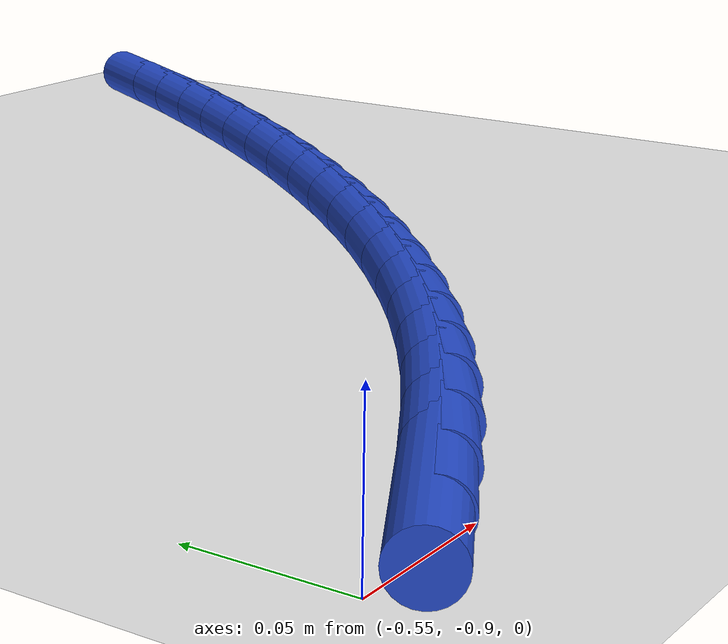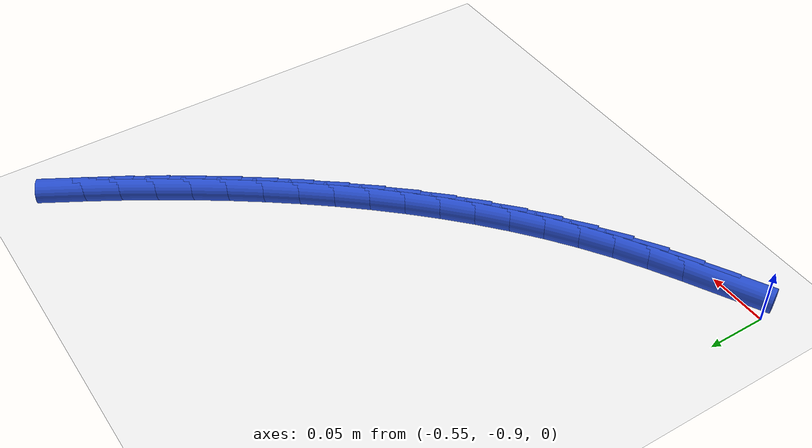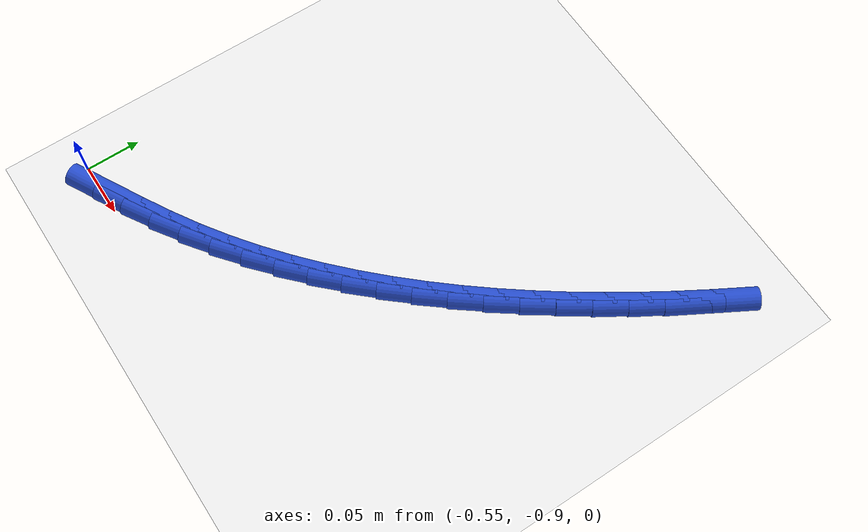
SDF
<sdf version="1.6">
 <world name="default">
  <model name="ground_plane">
   <static>1</static>
   <link name="link">
    <collision name="collision">
     <geometry><plane><normal>0 0 1</normal><size>100 100</size></plane></geometry>
     <surface><friction><ode><mu>100</mu><mu2>50</mu2></ode></friction></surface>
    </collision>
    <visual name="visual">
     <cast_shadows>0</cast_shadows>
     <geometry><plane><normal>0 0 1</normal><size>100 100</size></plane></geometry>
     <material>
      <script><uri>file://media/materials/scripts/gazebo.material</uri><name>Gazebo/WhiteGlow</name></script>
     </material>
    </visual>
   </link>
  </model>
  <model name="line">
   <link name="link_193">
    <pose>-0.5121933569216172 -0.8951482731390593 0.01 0 1.57 0.49168077200401605</pose>
    <collision name="collision">
     <geometry><cylinder><radius>0.01</radius><length>0.08</length></cylinder></geometry>
    </collision>
    <visual name="visual">
     <material>
      <script><name>Gazebo/Blue</name><uri>file://media/materials/scripts/gazebo.material</uri></script>
     </material>
     <geometry><cylinder><radius>0.01</radius><length>0.08</length></cylinder></geometry>
    </visual>
   </link>
   <link name="link_194">
    <pose>-0.486817605535445 -0.8815583137824394 0.01 0 1.57 0.5133104763786447</pose>
    <collision name="collision">
     <geometry><cylinder><radius>0.01</radius><length>0.08</length></cylinder></geometry>
    </collision>
    <visual name="visual">
     <material>
      <script><name>Gazebo/Blue</name><uri>file://media/materials/scripts/gazebo.material</uri></script>
     </material>
     <geometry><cylinder><radius>0.01</radius><length>0.08</length></cylinder></geometry>
    </visual>
   </link>
   <link name="link_195">
    <pose>-0.4619144552673385 -0.8675200827385988 0.01 0 1.57 0.5483102734181785</pose>
    <collision name="collision">
     <geometry><cylinder><radius>0.01</radius><length>0.08</length></cylinder></geometry>
    </collision>
    <visual name="visual">
     <material>
      <script><name>Gazebo/Blue</name><uri>file://media/materials/scripts/gazebo.material</uri></script>
     </material>
     <geometry><cylinder><radius>0.01</radius><length>0.08</length></cylinder></geometry>
    </visual>
   </link>
   <link name="link_196">
    <pose>-0.43759289370152804 -0.8526648930721512 0.01 0 1.57 0.5938508990710583</pose>
    <collision name="collision">
     <geometry><cylinder><radius>0.01</radius><length>0.08</length></cylinder></geometry>
    </collision>
    <visual name="visual">
     <material>
      <script><name>Gazebo/Blue</name><uri>file://media/materials/scripts/gazebo.material</uri></script>
     </material>
     <geometry><cylinder><radius>0.01</radius><length>0.08</length></cylinder></geometry>
    </visual>
   </link>
   <link name="link_197">
    <pose>-0.41394184563112996 -0.8366969502542364 0.01 0 1.57 0.6395257811486514</pose>
    <collision name="collision">
     <geometry><cylinder><radius>0.01</radius><length>0.08</length></cylinder></geometry>
    </collision>
    <visual name="visual">
     <material>
      <script><name>Gazebo/Blue</name><uri>file://media/materials/scripts/gazebo.material</uri></script>
     </material>
     <geometry><cylinder><radius>0.01</radius><length>0.08</length></cylinder></geometry>
    </visual>
   </link>
   <link name="link_198">
    <pose>-0.3909703752925624 -0.8196106102207005 0.01 0 1.57 0.6827824295981558</pose>
    <collision name="collision">
     <geometry><cylinder><radius>0.01</radius><length>0.08</length></cylinder></geometry>
    </collision>
    <visual name="visual">
     <material>
      <script><name>Gazebo/Blue</name><uri>file://media/materials/scripts/gazebo.material</uri></script>
     </material>
     <geometry><cylinder><radius>0.01</radius><length>0.08</length></cylinder></geometry>
    </visual>
   </link>
   <link name="link_199">
    <pose>-0.36866767896016917 -0.8014724134583852 0.01 0 1.57 0.7236342429775985</pose>
    <collision name="collision">
     <geometry><cylinder><radius>0.01</radius><length>0.08</length></cylinder></geometry>
    </collision>
    <visual name="visual">
     <material>
      <script><name>Gazebo/Blue</name><uri>file://media/materials/scripts/gazebo.material</uri></script>
     </material>
     <geometry><cylinder><radius>0.01</radius><length>0.08</length></cylinder></geometry>
    </visual>
   </link>
   <link name="link_200">
    <pose>-0.3470229529082951 -0.7823489004541342 0.01 0 1.57 0.7621257023276176</pose>
    <collision name="collision">
     <geometry><cylinder><radius>0.01</radius><length>0.08</length></cylinder></geometry>
    </collision>
    <visual name="visual">
     <material>
      <script><name>Gazebo/Blue</name><uri>file://media/materials/scripts/gazebo.material</uri></script>
     </material>
     <geometry><cylinder><radius>0.01</radius><length>0.08</length></cylinder></geometry>
    </visual>
   </link>
   <link name="link_201">
    <pose>-0.32602539341128445 -0.7623066116947896 0.01 0 1.57 0.7983247986497674</pose>
    <collision name="collision">
     <geometry><cylinder><radius>0.01</radius><length>0.08</length></cylinder></geometry>
    </collision>
    <visual name="visual">
     <material>
      <script><name>Gazebo/Blue</name><uri>file://media/materials/scripts/gazebo.material</uri></script>
     </material>
     <geometry><cylinder><radius>0.01</radius><length>0.08</length></cylinder></geometry>
    </visual>
   </link>
   <link name="link_202">
    <pose>-0.3056641967434828 -0.7414120876671957 0.01 0 1.57 0.8323162843791138</pose>
    <collision name="collision">
     <geometry><cylinder><radius>0.01</radius><length>0.08</length></cylinder></geometry>
    </collision>
    <visual name="visual">
     <material>
      <script><name>Gazebo/Blue</name><uri>file://media/materials/scripts/gazebo.material</uri></script>
     </material>
     <geometry><cylinder><radius>0.01</radius><length>0.08</length></cylinder></geometry>
    </visual>
   </link>
   <link name="link_203">
    <pose>-0.28592855917923443 -0.7197318688581948 0.01 0 1.57 0.8641959118097892</pose>
    <collision name="collision">
     <geometry><cylinder><radius>0.01</radius><length>0.08</length></cylinder></geometry>
    </collision>
    <visual name="visual">
     <material>
      <script><name>Gazebo/Blue</name><uri>file://media/materials/scripts/gazebo.material</uri></script>
     </material>
     <geometry><cylinder><radius>0.01</radius><length>0.08</length></cylinder></geometry>
    </visual>
   </link>
   <link name="link_204">
    <pose>-0.2668076769928839 -0.6973324957546299 0.01 0 1.57 0.894065688322716</pose>
    <collision name="collision">
     <geometry><cylinder><radius>0.01</radius><length>0.08</length></cylinder></geometry>
    </collision>
    <visual name="visual">
     <material>
      <script><name>Gazebo/Blue</name><uri>file://media/materials/scripts/gazebo.material</uri></script>
     </material>
     <geometry><cylinder><radius>0.01</radius><length>0.08</length></cylinder></geometry>
    </visual>
   </link>
   <link name="link_205">
    <pose>-0.24829074645877597 -0.6742805088433437 0.01 0 1.57 0.9220300911005621</pose>
    <collision name="collision">
     <geometry><cylinder><radius>0.01</radius><length>0.08</length></cylinder></geometry>
    </collision>
    <visual name="visual">
     <material>
      <script><name>Gazebo/Blue</name><uri>file://media/materials/scripts/gazebo.material</uri></script>
     </material>
     <geometry><cylinder><radius>0.01</radius><length>0.08</length></cylinder></geometry>
    </visual>
   </link>
   <link name="link_206">
    <pose>-0.23036696385125482 -0.6506424486111787 0.01 0 1.57 0.9481931345661753</pose>
    <collision name="collision">
     <geometry><cylinder><radius>0.01</radius><length>0.08</length></cylinder></geometry>
    </collision>
    <visual name="visual">
     <material>
      <script><name>Gazebo/Blue</name><uri>file://media/materials/scripts/gazebo.material</uri></script>
     </material>
     <geometry><cylinder><radius>0.01</radius><length>0.08</length></cylinder></geometry>
    </visual>
   </link>
   <link name="link_207">
    <pose>-0.2130255254446662 -0.6264848555449796 0.01 0 1.57 0.9726561620743818</pose>
    <collision name="collision">
     <geometry><cylinder><radius>0.01</radius><length>0.08</length></cylinder></geometry>
    </collision>
    <visual name="visual">
     <material>
      <script><name>Gazebo/Blue</name><uri>file://media/materials/scripts/gazebo.material</uri></script>
     </material>
     <geometry><cylinder><radius>0.01</radius><length>0.08</length></cylinder></geometry>
    </visual>
   </link>
   <link name="link_208">
    <pose>-0.19625562751335415 -0.6018742701315882 0.01 0 1.57 0.9955162301560899</pose>
    <collision name="collision">
     <geometry><cylinder><radius>0.01</radius><length>0.08</length></cylinder></geometry>
    </collision>
    <visual name="visual">
     <material>
      <script><name>Gazebo/Blue</name><uri>file://media/materials/scripts/gazebo.material</uri></script>
     </material>
     <geometry><cylinder><radius>0.01</radius><length>0.08</length></cylinder></geometry>
    </visual>
   </link>
   <link name="link_209">
    <pose>-0.18004646633166344 -0.5768772328578475 0.01 0 1.57 1.0168649613765453</pose>
    <collision name="collision">
     <geometry><cylinder><radius>0.01</radius><length>0.08</length></cylinder></geometry>
    </collision>
    <visual name="visual">
     <material>
      <script><name>Gazebo/Blue</name><uri>file://media/materials/scripts/gazebo.material</uri></script>
     </material>
     <geometry><cylinder><radius>0.01</radius><length>0.08</length></cylinder></geometry>
    </visual>
   </link>
   <link name="link_210">
    <pose>-0.16438723817393838 -0.5515602842106002 0.01 0 1.57 1.036787755150652</pose>
    <collision name="collision">
     <geometry><cylinder><radius>0.01</radius><length>0.08</length></cylinder></geometry>
    </collision>
    <visual name="visual">
     <material>
      <script><name>Gazebo/Blue</name><uri>file://media/materials/scripts/gazebo.material</uri></script>
     </material>
     <geometry><cylinder><radius>0.01</radius><length>0.08</length></cylinder></geometry>
    </visual>
   </link>
   <link name="link_211">
    <pose>-0.14926713931452443 -0.5259899646766901 0.01 0 1.57 1.055570886130069</pose>
    <collision name="collision">
     <geometry><cylinder><radius>0.01</radius><length>0.08</length></cylinder></geometry>
    </collision>
    <visual name="visual">
     <material>
      <script><name>Gazebo/Blue</name><uri>file://media/materials/scripts/gazebo.material</uri></script>
     </material>
     <geometry><cylinder><radius>0.01</radius><length>0.08</length></cylinder></geometry>
    </visual>
   </link>
  </model>
 </world>
</sdf>
